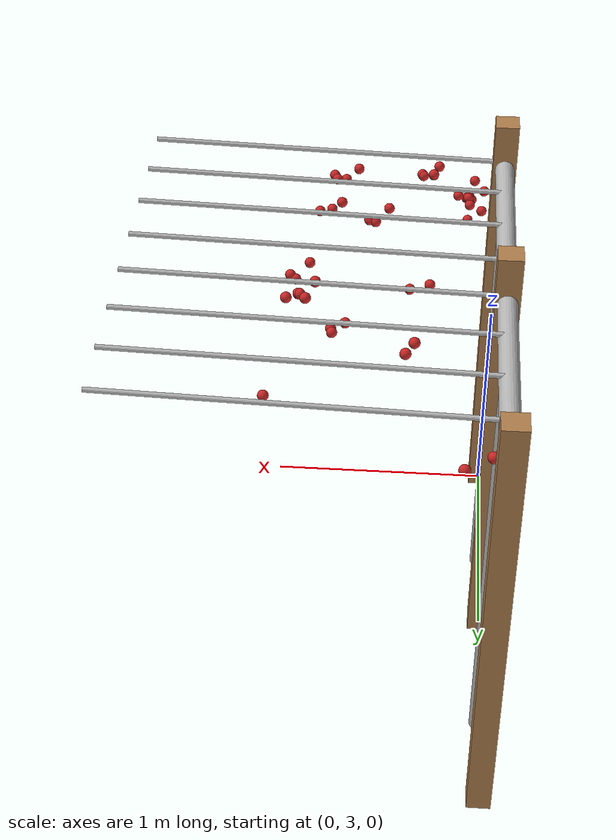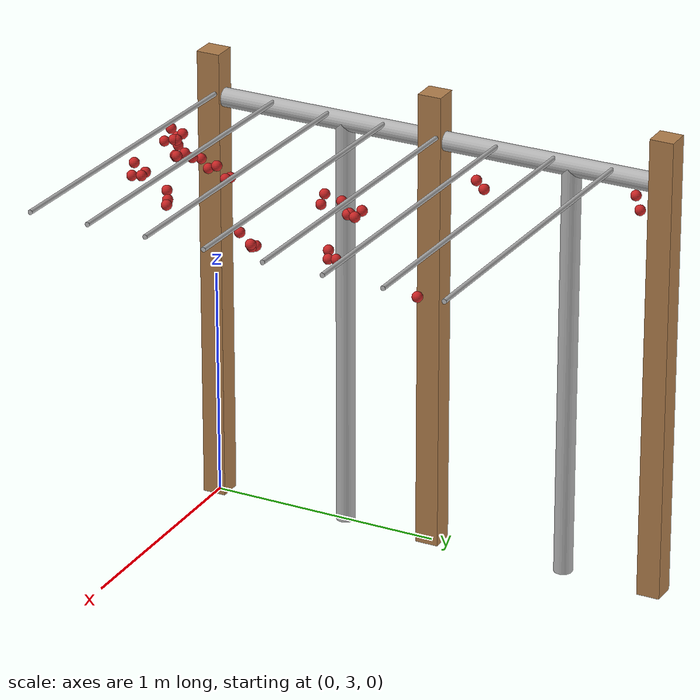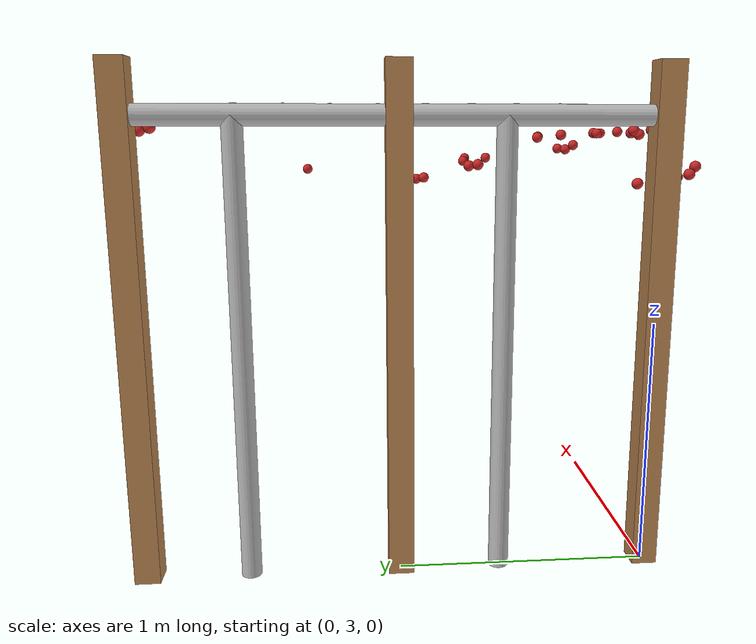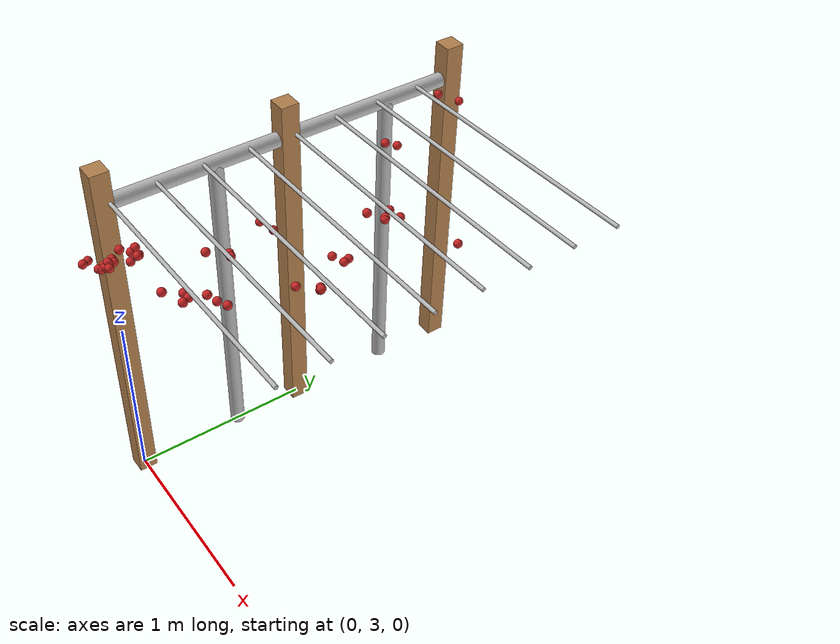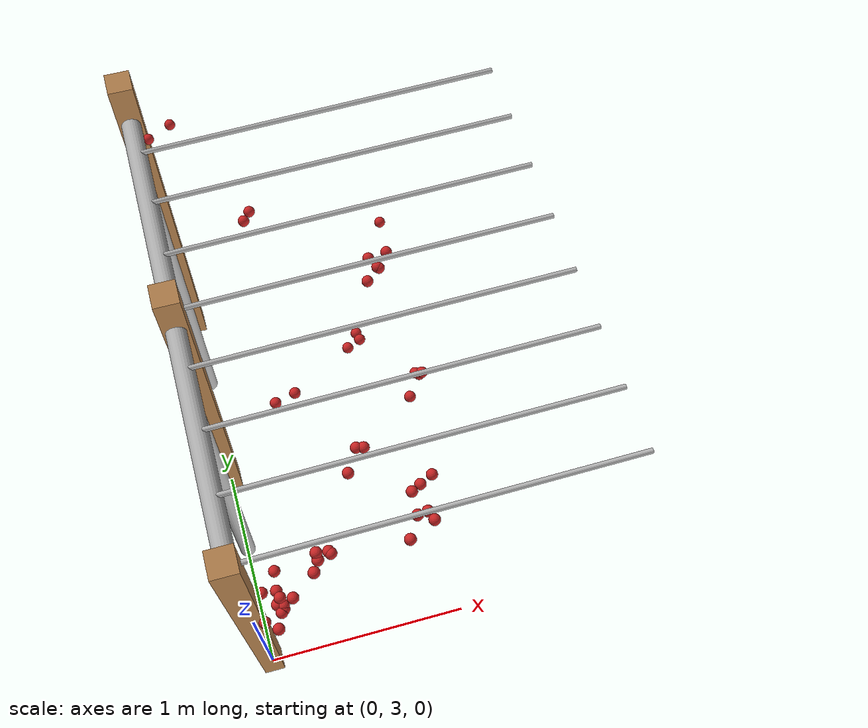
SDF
<sdf version="1.4">
 <model name="pergola">
  <include><name>post_3</name><pose>0.0 3.0 0 0 0 0</pose><uri>model://post</uri></include>
  <include><name>post_4</name><pose>0.0 4.0 0 0 0 0</pose><uri>model://post</uri></include>
  <include><name>post_5</name><pose>0.0 5.0 0 0 0 0</pose><uri>model://post</uri></include>
  <include><name>tree_3</name><pose>0.0 3.6 0 0 0 0</pose><uri>model://tree_trunk</uri></include>
  <include><name>tree_4</name><pose>0.0 4.6 0 0 0 0</pose><uri>model://tree_trunk</uri></include>
  <link name="baseBranch_3">
   <pose>0.0 3.5 1.8 1.5707963267948966 0 0</pose>
   <collision name="collision">
    <geometry><cylinder><radius>0.04</radius><length>1.0</length></cylinder></geometry>
   </collision>
   <visual name="visual">
    <geometry><cylinder><radius>0.04</radius><length>1.0</length></cylinder></geometry>
    <material>
     <script>
      <uri>model://tree_trunk/materials/scripts</uri>
      <uri>model://tree_trunk/materials/textures</uri>
      <name>Tree/Bark</name>
     </script>
    </material>
   </visual>
   <inertial>
    <mass>10</mass>
    <inertia>
     <ixx>0.8373333333333332</ixx>
     <ixy>0.0</ixy>
     <ixz>0.0</ixz>
     <iyy>0.8373333333333332</iyy>
     <iyz>0.0</iyz>
     <izz>0.008</izz>
    </inertia>
   </inertial>
  </link>
  <link name="baseBranch_4">
   <pose>0.0 4.5 1.8 1.5707963267948966 0 0</pose>
   <collision name="collision">
    <geometry><cylinder><radius>0.04</radius><length>1.0</length></cylinder></geometry>
   </collision>
   <visual name="visual">
    <geometry><cylinder><radius>0.04</radius><length>1.0</length></cylinder></geometry>
    <material>
     <script>
      <uri>model://tree_trunk/materials/scripts</uri>
      <uri>model://tree_trunk/materials/textures</uri>
      <name>Tree/Bark</name>
     </script>
    </material>
   </visual>
   <inertial>
    <mass>10</mass>
    <inertia>
     <ixx>0.8373333333333332</ixx>
     <ixy>0.0</ixy>
     <ixz>0.0</ixz>
     <iyy>0.8373333333333332</iyy>
     <iyz>0.0</iyz>
     <izz>0.008</izz>
    </inertia>
   </inertial>
  </link>
  <link name="vine_24">
   <pose>0.75 3.03 1.85 0 1.5374753309166493 0</pose>
   <collision name="collision">
    <geometry><cylinder><radius>0.01</radius><length>1.5008331019803633</length></cylinder></geometry>
   </collision>
   <visual name="visual">
    <geometry><cylinder><radius>0.01</radius><length>1.5008331019803633</length></cylinder></geometry>
    <material>
     <script>
      <uri>model://tree_trunk/materials/scripts</uri>
      <uri>model://tree_trunk/materials/textures</uri>
      <name>Tree/Bark</name>
     </script>
    </material>
   </visual>
   <inertial>
    <mass>5</mass>
    <inertia>
     <ixx>0.9386666666666668</ixx>
     <ixy>0.0</ixy>
     <ixz>0.0</ixz>
     <iyy>0.9386666666666668</iyy>
     <iyz>0.0</iyz>
     <izz>0.00025</izz>
    </inertia>
   </inertial>
  </link>
  <link name="vine_26">
   <pose>0.75 3.28 1.85 0 1.5374753309166493 0</pose>
   <collision name="collision">
    <geometry><cylinder><radius>0.01</radius><length>1.5008331019803633</length></cylinder></geometry>
   </collision>
   <visual name="visual">
    <geometry><cylinder><radius>0.01</radius><length>1.5008331019803633</length></cylinder></geometry>
    <material>
     <script>
      <uri>model://tree_trunk/materials/scripts</uri>
      <uri>model://tree_trunk/materials/textures</uri>
      <name>Tree/Bark</name>
     </script>
    </material>
   </visual>
   <inertial>
    <mass>5</mass>
    <inertia>
     <ixx>0.9386666666666668</ixx>
     <ixy>0.0</ixy>
     <ixz>0.0</ixz>
     <iyy>0.9386666666666668</iyy>
     <iyz>0.0</iyz>
     <izz>0.00025</izz>
    </inertia>
   </inertial>
  </link>
  <link name="vine_28">
   <pose>0.75 3.53 1.85 0 1.5374753309166493 0</pose>
   <collision name="collision">
    <geometry><cylinder><radius>0.01</radius><length>1.5008331019803633</length></cylinder></geometry>
   </collision>
   <visual name="visual">
    <geometry><cylinder><radius>0.01</radius><length>1.5008331019803633</length></cylinder></geometry>
    <material>
     <script>
      <uri>model://tree_trunk/materials/scripts</uri>
      <uri>model://tree_trunk/materials/textures</uri>
      <name>Tree/Bark</name>
     </script>
    </material>
   </visual>
   <inertial>
    <mass>5</mass>
    <inertia>
     <ixx>0.9386666666666668</ixx>
     <ixy>0.0</ixy>
     <ixz>0.0</ixz>
     <iyy>0.9386666666666668</iyy>
     <iyz>0.0</iyz>
     <izz>0.00025</izz>
    </inertia>
   </inertial>
  </link>
  <link name="vine_30">
   <pose>0.75 3.78 1.85 0 1.5374753309166493 0</pose>
   <collision name="collision">
    <geometry><cylinder><radius>0.01</radius><length>1.5008331019803633</length></cylinder></geometry>
   </collision>
   <visual name="visual">
    <geometry><cylinder><radius>0.01</radius><length>1.5008331019803633</length></cylinder></geometry>
    <material>
     <script>
      <uri>model://tree_trunk/materials/scripts</uri>
      <uri>model://tree_trunk/materials/textures</uri>
      <name>Tree/Bark</name>
     </script>
    </material>
   </visual>
   <inertial>
    <mass>5</mass>
    <inertia>
     <ixx>0.9386666666666668</ixx>
     <ixy>0.0</ixy>
     <ixz>0.0</ixz>
     <iyy>0.9386666666666668</iyy>
     <iyz>0.0</iyz>
     <izz>0.00025</izz>
    </inertia>
   </inertial>
  </link>
  <link name="vine_32">
   <pose>0.75 4.03 1.85 0 1.5374753309166493 0</pose>
   <collision name="collision">
    <geometry><cylinder><radius>0.01</radius><length>1.5008331019803633</length></cylinder></geometry>
   </collision>
   <visual name="visual">
    <geometry><cylinder><radius>0.01</radius><length>1.5008331019803633</length></cylinder></geometry>
    <material>
     <script>
      <uri>model://tree_trunk/materials/scripts</uri>
      <uri>model://tree_trunk/materials/textures</uri>
      <name>Tree/Bark</name>
     </script>
    </material>
   </visual>
   <inertial>
    <mass>5</mass>
    <inertia>
     <ixx>0.9386666666666668</ixx>
     <ixy>0.0</ixy>
     <ixz>0.0</ixz>
     <iyy>0.9386666666666668</iyy>
     <iyz>0.0</iyz>
     <izz>0.00025</izz>
    </inertia>
   </inertial>
  </link>
  <link name="vine_34">
   <pose>0.75 4.28 1.85 0 1.5374753309166493 0</pose>
   <collision name="collision">
    <geometry><cylinder><radius>0.01</radius><length>1.5008331019803633</length></cylinder></geometry>
   </collision>
   <visual name="visual">
    <geometry><cylinder><radius>0.01</radius><length>1.5008331019803633</length></cylinder></geometry>
    <material>
     <script>
      <uri>model://tree_trunk/materials/scripts</uri>
      <uri>model://tree_trunk/materials/textures</uri>
      <name>Tree/Bark</name>
     </script>
    </material>
   </visual>
   <inertial>
    <mass>5</mass>
    <inertia>
     <ixx>0.9386666666666668</ixx>
     <ixy>0.0</ixy>
     <ixz>0.0</ixz>
     <iyy>0.9386666666666668</iyy>
     <iyz>0.0</iyz>
     <izz>0.00025</izz>
    </inertia>
   </inertial>
  </link>
  <link name="vine_36">
   <pose>0.75 4.53 1.85 0 1.5374753309166493 0</pose>
   <collision name="collision">
    <geometry><cylinder><radius>0.01</radius><length>1.5008331019803633</length></cylinder></geometry>
   </collision>
   <visual name="visual">
    <geometry><cylinder><radius>0.01</radius><length>1.5008331019803633</length></cylinder></geometry>
    <material>
     <script>
      <uri>model://tree_trunk/materials/scripts</uri>
      <uri>model://tree_trunk/materials/textures</uri>
      <name>Tree/Bark</name>
     </script>
    </material>
   </visual>
   <inertial>
    <mass>5</mass>
    <inertia>
     <ixx>0.9386666666666668</ixx>
     <ixy>0.0</ixy>
     <ixz>0.0</ixz>
     <iyy>0.9386666666666668</iyy>
     <iyz>0.0</iyz>
     <izz>0.00025</izz>
    </inertia>
   </inertial>
  </link>
  <link name="vine_38">
   <pose>0.75 4.78 1.85 0 1.5374753309166493 0</pose>
   <collision name="collision">
    <geometry><cylinder><radius>0.01</radius><length>1.5008331019803633</length></cylinder></geometry>
   </collision>
   <visual name="visual">
    <geometry><cylinder><radius>0.01</radius><length>1.5008331019803633</length></cylinder></geometry>
    <material>
     <script>
      <uri>model://tree_trunk/materials/scripts</uri>
      <uri>model://tree_trunk/materials/textures</uri>
      <name>Tree/Bark</name>
     </script>
    </material>
   </visual>
   <inertial>
    <mass>5</mass>
    <inertia>
     <ixx>0.9386666666666668</ixx>
     <ixy>0.0</ixy>
     <ixz>0.0</ixz>
     <iyy>0.9386666666666668</iyy>
     <iyz>0.0</iyz>
     <izz>0.00025</izz>
    </inertia>
   </inertial>
  </link>
  <link name="fruit_2">
   <pose>0.48228560694271283 3.2757549213742156 1.724437775028247 0 0 0</pose>
   <collision name="fruit_collision_2"><geometry><sphere><radius>0.022</radius></sphere></geometry></collision>
   <visual name="visual">
    <geometry><sphere><radius>0.022</radius></sphere></geometry>
    <material><script><name>Gazebo/Red</name></script></material>
   </visual>
   <inertial>
    <mass>0.05</mass>
    <inertia>
     <ixx>9.679999999999999e-06</ixx>
     <ixy>0.0</ixy>
     <ixz>0.0</ixz>
     <iyy>9.679999999999999e-06</iyy>
     <iyz>0.0</iyz>
     <izz>9.679999999999999e-06</izz>
    </inertia>
   </inertial>
   <sensor name="fruit_contact_2" type="contact">
    <plugin name="contact_plugin_2" filename="libcontact_plugin.so"/>
    <contact><collision>fruit_collision_2</collision><topic>fruit_contact_topic_2</topic></contact>
   </sensor>
  </link>
  <link name="fruit_12">
   <pose>0.797906002147465 3.5493905279623754 1.6179921527508667 0 0 0</pose>
   <collision name="fruit_collision_12"><geometry><sphere><radius>0.022</radius></sphere></geometry></collision>
   <visual name="visual">
    <geometry><sphere><radius>0.022</radius></sphere></geometry>
    <material><script><name>Gazebo/Red</name></script></material>
   </visual>
   <inertial>
    <mass>0.05</mass>
    <inertia>
     <ixx>9.679999999999999e-06</ixx>
     <ixy>0.0</ixy>
     <ixz>0.0</ixz>
     <iyy>9.679999999999999e-06</iyy>
     <iyz>0.0</iyz>
     <izz>9.679999999999999e-06</izz>
    </inertia>
   </inertial>
   <sensor name="fruit_contact_12" type="contact">
    <plugin name="contact_plugin_12" filename="libcontact_plugin.so"/>
    <contact><collision>fruit_collision_12</collision><topic>fruit_contact_topic_12</topic></contact>
   </sensor>
  </link>
  <link name="fruit_21">
   <pose>0.07246550612564173 2.8684834055351915 1.5783078235168897 0 0 0</pose>
   <collision name="fruit_collision_21"><geometry><sphere><radius>0.022</radius></sphere></geometry></collision>
   <visual name="visual">
    <geometry><sphere><radius>0.022</radius></sphere></geometry>
    <material><script><name>Gazebo/Red</name></script></material>
   </visual>
   <inertial>
    <mass>0.05</mass>
    <inertia>
     <ixx>9.679999999999999e-06</ixx>
     <ixy>0.0</ixy>
     <ixz>0.0</ixz>
     <iyy>9.679999999999999e-06</iyy>
     <iyz>0.0</iyz>
     <izz>9.679999999999999e-06</izz>
    </inertia>
   </inertial>
   <sensor name="fruit_contact_21" type="contact">
    <plugin name="contact_plugin_21" filename="libcontact_plugin.so"/>
    <contact><collision>fruit_collision_21</collision><topic>fruit_contact_topic_21</topic></contact>
   </sensor>
  </link>
  <link name="fruit_32">
   <pose>0.277513252841198 2.9539990155890616 1.7461623810911704 0 0 0</pose>
   <collision name="fruit_collision_32"><geometry><sphere><radius>0.022</radius></sphere></geometry></collision>
   <visual name="visual">
    <geometry><sphere><radius>0.022</radius></sphere></geometry>
    <material><script><name>Gazebo/Red</name></script></material>
   </visual>
   <inertial>
    <mass>0.05</mass>
    <inertia>
     <ixx>9.679999999999999e-06</ixx>
     <ixy>0.0</ixy>
     <ixz>0.0</ixz>
     <iyy>9.679999999999999e-06</iyy>
     <iyz>0.0</iyz>
     <izz>9.679999999999999e-06</izz>
    </inertia>
   </inertial>
   <sensor name="fruit_contact_32" type="contact">
    <plugin name="contact_plugin_32" filename="libcontact_plugin.so"/>
    <contact><collision>fruit_collision_32</collision><topic>fruit_contact_topic_32</topic></contact>
   </sensor>
  </link>
  <link name="fruit_51">
   <pose>0.7435196531261605 3.9699678349012135 1.813621277704283 0 0 0</pose>
   <collision name="fruit_collision_51"><geometry><sphere><radius>0.022</radius></sphere></geometry></collision>
   <visual name="visual">
    <geometry><sphere><radius>0.022</radius></sphere></geometry>
    <material><script><name>Gazebo/Red</name></script></material>
   </visual>
   <inertial>
    <mass>0.05</mass>
    <inertia>
     <ixx>9.679999999999999e-06</ixx>
     <ixy>0.0</ixy>
     <ixz>0.0</ixz>
     <iyy>9.679999999999999e-06</iyy>
     <iyz>0.0</iyz>
     <izz>9.679999999999999e-06</izz>
    </inertia>
   </inertial>
   <sensor name="fruit_contact_51" type="contact">
    <plugin name="contact_plugin_51" filename="libcontact_plugin.so"/>
    <contact><collision>fruit_collision_51</collision><topic>fruit_contact_topic_51</topic></contact>
   </sensor>
  </link>
  <link name="fruit_53">
   <pose>0.34710895054380525 4.352707107458269 1.823338897350905 0 0 0</pose>
   <collision name="fruit_collision_53"><geometry><sphere><radius>0.022</radius></sphere></geometry></collision>
   <visual name="visual">
    <geometry><sphere><radius>0.022</radius></sphere></geometry>
    <material><script><name>Gazebo/Red</name></script></material>
   </visual>
   <inertial>
    <mass>0.05</mass>
    <inertia>
     <ixx>9.679999999999999e-06</ixx>
     <ixy>0.0</ixy>
     <ixz>0.0</ixz>
     <iyy>9.679999999999999e-06</iyy>
     <iyz>0.0</iyz>
     <izz>9.679999999999999e-06</izz>
    </inertia>
   </inertial>
   <sensor name="fruit_contact_53" type="contact">
    <plugin name="contact_plugin_53" filename="libcontact_plugin.so"/>
    <contact><collision>fruit_collision_53</collision><topic>fruit_contact_topic_53</topic></contact>
   </sensor>
  </link>
  <link name="fruit_74">
   <pose>0.6266371625908188 2.9822994384784574 1.7363476053631557 0 0 0</pose>
   <collision name="fruit_collision_74"><geometry><sphere><radius>0.022</radius></sphere></geometry></collision>
   <visual name="visual">
    <geometry><sphere><radius>0.022</radius></sphere></geometry>
    <material><script><name>Gazebo/Red</name></script></material>
   </visual>
   <inertial>
    <mass>0.05</mass>
    <inertia>
     <ixx>9.679999999999999e-06</ixx>
     <ixy>0.0</ixy>
     <ixz>0.0</ixz>
     <iyy>9.679999999999999e-06</iyy>
     <iyz>0.0</iyz>
     <izz>9.679999999999999e-06</izz>
    </inertia>
   </inertial>
   <sensor name="fruit_contact_74" type="contact">
    <plugin name="contact_plugin_74" filename="libcontact_plugin.so"/>
    <contact><collision>fruit_collision_74</collision><topic>fruit_contact_topic_74</topic></contact>
   </sensor>
  </link>
  <link name="fruit_77">
   <pose>0.6322827952611394 3.8528614494894913 1.5375579651353963 0 0 0</pose>
   <collision name="fruit_collision_77"><geometry><sphere><radius>0.022</radius></sphere></geometry></collision>
   <visual name="visual">
    <geometry><sphere><radius>0.022</radius></sphere></geometry>
    <material><script><name>Gazebo/Red</name></script></material>
   </visual>
   <inertial>
    <mass>0.05</mass>
    <inertia>
     <ixx>9.679999999999999e-06</ixx>
     <ixy>0.0</ixy>
     <ixz>0.0</ixz>
     <iyy>9.679999999999999e-06</iyy>
     <iyz>0.0</iyz>
     <izz>9.679999999999999e-06</izz>
    </inertia>
   </inertial>
   <sensor name="fruit_contact_77" type="contact">
    <plugin name="contact_plugin_77" filename="libcontact_plugin.so"/>
    <contact><collision>fruit_collision_77</collision><topic>fruit_contact_topic_77</topic></contact>
   </sensor>
  </link>
  <link name="fruit_80">
   <pose>0.29739922029324084 3.6614577858737376 1.6084635475613098 0 0 0</pose>
   <collision name="fruit_collision_80"><geometry><sphere><radius>0.022</radius></sphere></geometry></collision>
   <visual name="visual">
    <geometry><sphere><radius>0.022</radius></sphere></geometry>
    <material><script><name>Gazebo/Red</name></script></material>
   </visual>
   <inertial>
    <mass>0.05</mass>
    <inertia>
     <ixx>9.679999999999999e-06</ixx>
     <ixy>0.0</ixy>
     <ixz>0.0</ixz>
     <iyy>9.679999999999999e-06</iyy>
     <iyz>0.0</iyz>
     <izz>9.679999999999999e-06</izz>
    </inertia>
   </inertial>
   <sensor name="fruit_contact_80" type="contact">
    <plugin name="contact_plugin_80" filename="libcontact_plugin.so"/>
    <contact><collision>fruit_collision_80</collision><topic>fruit_contact_topic_80</topic></contact>
   </sensor>
  </link>
  <link name="fruit_96">
   <pose>0.6890414027352684 3.1648738971537567 1.677007216388509 0 0 0</pose>
   <collision name="fruit_collision_96"><geometry><sphere><radius>0.022</radius></sphere></geometry></collision>
   <visual name="visual">
    <geometry><sphere><radius>0.022</radius></sphere></geometry>
    <material><script><name>Gazebo/Red</name></script></material>
   </visual>
   <inertial>
    <mass>0.05</mass>
    <inertia>
     <ixx>9.679999999999999e-06</ixx>
     <ixy>0.0</ixy>
     <ixz>0.0</ixz>
     <iyy>9.679999999999999e-06</iyy>
     <iyz>0.0</iyz>
     <izz>9.679999999999999e-06</izz>
    </inertia>
   </inertial>
   <sensor name="fruit_contact_96" type="contact">
    <plugin name="contact_plugin_96" filename="libcontact_plugin.so"/>
    <contact><collision>fruit_collision_96</collision><topic>fruit_contact_topic_96</topic></contact>
   </sensor>
  </link>
  <link name="fruit_99">
   <pose>0.9120112643259474 4.379731064261952 1.5645137264958877 0 0 0</pose>
   <collision name="fruit_collision_99"><geometry><sphere><radius>0.022</radius></sphere></geometry></collision>
   <visual name="visual">
    <geometry><sphere><radius>0.022</radius></sphere></geometry>
    <material><script><name>Gazebo/Red</name></script></material>
   </visual>
   <inertial>
    <mass>0.05</mass>
    <inertia>
     <ixx>9.679999999999999e-06</ixx>
     <ixy>0.0</ixy>
     <ixz>0.0</ixz>
     <iyy>9.679999999999999e-06</iyy>
     <iyz>0.0</iyz>
     <izz>9.679999999999999e-06</izz>
    </inertia>
   </inertial>
   <sensor name="fruit_contact_99" type="contact">
    <plugin name="contact_plugin_99" filename="libcontact_plugin.so"/>
    <contact><collision>fruit_collision_99</collision><topic>fruit_contact_topic_99</topic></contact>
   </sensor>
  </link>
  <link name="fruit_113">
   <pose>0.05475298214225928 4.901495532427784 1.7554658803422527 0 0 0</pose>
   <collision name="fruit_collision_113"><geometry><sphere><radius>0.022</radius></sphere></geometry></collision>
   <visual name="visual">
    <geometry><sphere><radius>0.022</radius></sphere></geometry>
    <material><script><name>Gazebo/Red</name></script></material>
   </visual>
   <inertial>
    <mass>0.05</mass>
    <inertia>
     <ixx>9.679999999999999e-06</ixx>
     <ixy>0.0</ixy>
     <ixz>0.0</ixz>
     <iyy>9.679999999999999e-06</iyy>
     <iyz>0.0</iyz>
     <izz>9.679999999999999e-06</izz>
    </inertia>
   </inertial>
   <sensor name="fruit_contact_113" type="contact">
    <plugin name="contact_plugin_113" filename="libcontact_plugin.so"/>
    <contact><collision>fruit_collision_113</collision><topic>fruit_contact_topic_113</topic></contact>
   </sensor>
  </link>
  <link name="fruit_138">
   <pose>0.11523222828877826 2.8285510894506216 1.605704446185165 0 0 0</pose>
   <collision name="fruit_collision_138"><geometry><sphere><radius>0.022</radius></sphere></geometry></collision>
   <visual name="visual">
    <geometry><sphere><radius>0.022</radius></sphere></geometry>
    <material><script><name>Gazebo/Red</name></script></material>
   </visual>
   <inertial>
    <mass>0.05</mass>
    <inertia>
     <ixx>9.679999999999999e-06</ixx>
     <ixy>0.0</ixy>
     <ixz>0.0</ixz>
     <iyy>9.679999999999999e-06</iyy>
     <iyz>0.0</iyz>
     <izz>9.679999999999999e-06</izz>
    </inertia>
   </inertial>
   <sensor name="fruit_contact_138" type="contact">
    <plugin name="contact_plugin_138" filename="libcontact_plugin.so"/>
    <contact><collision>fruit_collision_138</collision><topic>fruit_contact_topic_138</topic></contact>
   </sensor>
  </link>
  <link name="fruit_141">
   <pose>0.08228757611143839 2.980320774164884 1.544967563059762 0 0 0</pose>
   <collision name="fruit_collision_141"><geometry><sphere><radius>0.022</radius></sphere></geometry></collision>
   <visual name="visual">
    <geometry><sphere><radius>0.022</radius></sphere></geometry>
    <material><script><name>Gazebo/Red</name></script></material>
   </visual>
   <inertial>
    <mass>0.05</mass>
    <inertia>
     <ixx>9.679999999999999e-06</ixx>
     <ixy>0.0</ixy>
     <ixz>0.0</ixz>
     <iyy>9.679999999999999e-06</iyy>
     <iyz>0.0</iyz>
     <izz>9.679999999999999e-06</izz>
    </inertia>
   </inertial>
   <sensor name="fruit_contact_141" type="contact">
    <plugin name="contact_plugin_141" filename="libcontact_plugin.so"/>
    <contact><collision>fruit_collision_141</collision><topic>fruit_contact_topic_141</topic></contact>
   </sensor>
  </link>
  <link name="fruit_158">
   <pose>0.805168778830281 4.026692936503704 1.793913836388526 0 0 0</pose>
   <collision name="fruit_collision_158"><geometry><sphere><radius>0.022</radius></sphere></geometry></collision>
   <visual name="visual">
    <geometry><sphere><radius>0.022</radius></sphere></geometry>
    <material><script><name>Gazebo/Red</name></script></material>
   </visual>
   <inertial>
    <mass>0.05</mass>
    <inertia>
     <ixx>9.679999999999999e-06</ixx>
     <ixy>0.0</ixy>
     <ixz>0.0</ixz>
     <iyy>9.679999999999999e-06</iyy>
     <iyz>0.0</iyz>
     <izz>9.679999999999999e-06</izz>
    </inertia>
   </inertial>
   <sensor name="fruit_contact_158" type="contact">
    <plugin name="contact_plugin_158" filename="libcontact_plugin.so"/>
    <contact><collision>fruit_collision_158</collision><topic>fruit_contact_topic_158</topic></contact>
   </sensor>
  </link>
  <link name="fruit_163">
   <pose>0.3440441153015273 3.0157467129118403 1.7336615635601325 0 0 0</pose>
   <collision name="fruit_collision_163"><geometry><sphere><radius>0.022</radius></sphere></geometry></collision>
   <visual name="visual">
    <geometry><sphere><radius>0.022</radius></sphere></geometry>
    <material><script><name>Gazebo/Red</name></script></material>
   </visual>
   <inertial>
    <mass>0.05</mass>
    <inertia>
     <ixx>9.679999999999999e-06</ixx>
     <ixy>0.0</ixy>
     <ixz>0.0</ixz>
     <iyy>9.679999999999999e-06</iyy>
     <iyz>0.0</iyz>
     <izz>9.679999999999999e-06</izz>
    </inertia>
   </inertial>
   <sensor name="fruit_contact_163" type="contact">
    <plugin name="contact_plugin_163" filename="libcontact_plugin.so"/>
    <contact><collision>fruit_collision_163</collision><topic>fruit_contact_topic_163</topic></contact>
   </sensor>
  </link>
  <link name="fruit_191">
   <pose>0.15361391648360812 4.963145561027268 1.7442247412412826 0 0 0</pose>
   <collision name="fruit_collision_191"><geometry><sphere><radius>0.022</radius></sphere></geometry></collision>
   <visual name="visual">
    <geometry><sphere><radius>0.022</radius></sphere></geometry>
    <material><script><name>Gazebo/Red</name></script></material>
   </visual>
   <inertial>
    <mass>0.05</mass>
    <inertia>
     <ixx>9.679999999999999e-06</ixx>
     <ixy>0.0</ixy>
     <ixz>0.0</ixz>
     <iyy>9.679999999999999e-06</iyy>
     <iyz>0.0</iyz>
     <izz>9.679999999999999e-06</izz>
    </inertia>
   </inertial>
   <sensor name="fruit_contact_191" type="contact">
    <plugin name="contact_plugin_191" filename="libcontact_plugin.so"/>
    <contact><collision>fruit_collision_191</collision><topic>fruit_contact_topic_191</topic></contact>
   </sensor>
  </link>
  <link name="fruit_201">
   <pose>0.8626769190974628 3.6380440318166167 1.60061206513106 0 0 0</pose>
   <collision name="fruit_collision_201"><geometry><sphere><radius>0.022</radius></sphere></geometry></collision>
   <visual name="visual">
    <geometry><sphere><radius>0.022</radius></sphere></geometry>
    <material><script><name>Gazebo/Red</name></script></material>
   </visual>
   <inertial>
    <mass>0.05</mass>
    <inertia>
     <ixx>9.679999999999999e-06</ixx>
     <ixy>0.0</ixy>
     <ixz>0.0</ixz>
     <iyy>9.679999999999999e-06</iyy>
     <iyz>0.0</iyz>
     <izz>9.679999999999999e-06</izz>
    </inertia>
   </inertial>
   <sensor name="fruit_contact_201" type="contact">
    <plugin name="contact_plugin_201" filename="libcontact_plugin.so"/>
    <contact><collision>fruit_collision_201</collision><topic>fruit_contact_topic_201</topic></contact>
   </sensor>
  </link>
  <link name="fruit_219">
   <pose>0.6826805650054453 3.911925625299389 1.5305198378944052 0 0 0</pose>
   <collision name="fruit_collision_219"><geometry><sphere><radius>0.022</radius></sphere></geometry></collision>
   <visual name="visual">
    <geometry><sphere><radius>0.022</radius></sphere></geometry>
    <material><script><name>Gazebo/Red</name></script></material>
   </visual>
   <inertial>
    <mass>0.05</mass>
    <inertia>
     <ixx>9.679999999999999e-06</ixx>
     <ixy>0.0</ixy>
     <ixz>0.0</ixz>
     <iyy>9.679999999999999e-06</iyy>
     <iyz>0.0</iyz>
     <izz>9.679999999999999e-06</izz>
    </inertia>
   </inertial>
   <sensor name="fruit_contact_219" type="contact">
    <plugin name="contact_plugin_219" filename="libcontact_plugin.so"/>
    <contact><collision>fruit_collision_219</collision><topic>fruit_contact_topic_219</topic></contact>
   </sensor>
  </link>
  <link name="fruit_226">
   <pose>0.3784075021893974 4.4011033924070695 1.807860612959606 0 0 0</pose>
   <collision name="fruit_collision_226"><geometry><sphere><radius>0.022</radius></sphere></geometry></collision>
   <visual name="visual">
    <geometry><sphere><radius>0.022</radius></sphere></geometry>
    <material><script><name>Gazebo/Red</name></script></material>
   </visual>
   <inertial>
    <mass>0.05</mass>
    <inertia>
     <ixx>9.679999999999999e-06</ixx>
     <ixy>0.0</ixy>
     <ixz>0.0</ixz>
     <iyy>9.679999999999999e-06</iyy>
     <iyz>0.0</iyz>
     <izz>9.679999999999999e-06</izz>
    </inertia>
   </inertial>
   <sensor name="fruit_contact_226" type="contact">
    <plugin name="contact_plugin_226" filename="libcontact_plugin.so"/>
    <contact><collision>fruit_collision_226</collision><topic>fruit_contact_topic_226</topic></contact>
   </sensor>
  </link>
  <link name="fruit_241">
   <pose>0.6891350357144942 3.881591238122407 1.5286527528764788 0 0 0</pose>
   <collision name="fruit_collision_241"><geometry><sphere><radius>0.022</radius></sphere></geometry></collision>
   <visual name="visual">
    <geometry><sphere><radius>0.022</radius></sphere></geometry>
    <material><script><name>Gazebo/Red</name></script></material>
   </visual>
   <inertial>
    <mass>0.05</mass>
    <inertia>
     <ixx>9.679999999999999e-06</ixx>
     <ixy>0.0</ixy>
     <ixz>0.0</ixz>
     <iyy>9.679999999999999e-06</iyy>
     <iyz>0.0</iyz>
     <izz>9.679999999999999e-06</izz>
    </inertia>
   </inertial>
   <sensor name="fruit_contact_241" type="contact">
    <plugin name="contact_plugin_241" filename="libcontact_plugin.so"/>
    <contact><collision>fruit_collision_241</collision><topic>fruit_contact_topic_241</topic></contact>
   </sensor>
  </link>
  <link name="fruit_243">
   <pose>0.3495448480456467 3.0067548168306635 1.7355145530970673 0 0 0</pose>
   <collision name="fruit_collision_243"><geometry><sphere><radius>0.022</radius></sphere></geometry></collision>
   <visual name="visual">
    <geometry><sphere><radius>0.022</radius></sphere></geometry>
    <material><script><name>Gazebo/Red</name></script></material>
   </visual>
   <inertial>
    <mass>0.05</mass>
    <inertia>
     <ixx>9.679999999999999e-06</ixx>
     <ixy>0.0</ixy>
     <ixz>0.0</ixz>
     <iyy>9.679999999999999e-06</iyy>
     <iyz>0.0</iyz>
     <izz>9.679999999999999e-06</izz>
    </inertia>
   </inertial>
   <sensor name="fruit_contact_243" type="contact">
    <plugin name="contact_plugin_243" filename="libcontact_plugin.so"/>
    <contact><collision>fruit_collision_243</collision><topic>fruit_contact_topic_243</topic></contact>
   </sensor>
  </link>
  <link name="fruit_244">
   <pose>0.780246901839275 3.2139629120989026 1.659407616458796 0 0 0</pose>
   <collision name="fruit_collision_244"><geometry><sphere><radius>0.022</radius></sphere></geometry></collision>
   <visual name="visual">
    <geometry><sphere><radius>0.022</radius></sphere></geometry>
    <material><script><name>Gazebo/Red</name></script></material>
   </visual>
   <inertial>
    <mass>0.05</mass>
    <inertia>
     <ixx>9.679999999999999e-06</ixx>
     <ixy>0.0</ixy>
     <ixz>0.0</ixz>
     <iyy>9.679999999999999e-06</iyy>
     <iyz>0.0</iyz>
     <izz>9.679999999999999e-06</izz>
    </inertia>
   </inertial>
   <sensor name="fruit_contact_244" type="contact">
    <plugin name="contact_plugin_244" filename="libcontact_plugin.so"/>
    <contact><collision>fruit_collision_244</collision><topic>fruit_contact_topic_244</topic></contact>
   </sensor>
  </link>
  <link name="fruit_266">
   <pose>0.18709053180250668 2.9250626744639407 1.5861733317742115 0 0 0</pose>
   <collision name="fruit_collision_266"><geometry><sphere><radius>0.022</radius></sphere></geometry></collision>
   <visual name="visual">
    <geometry><sphere><radius>0.022</radius></sphere></geometry>
    <material><script><name>Gazebo/Red</name></script></material>
   </visual>
   <inertial>
    <mass>0.05</mass>
    <inertia>
     <ixx>9.679999999999999e-06</ixx>
     <ixy>0.0</ixy>
     <ixz>0.0</ixz>
     <iyy>9.679999999999999e-06</iyy>
     <iyz>0.0</iyz>
     <izz>9.679999999999999e-06</izz>
    </inertia>
   </inertial>
   <sensor name="fruit_contact_266" type="contact">
    <plugin name="contact_plugin_266" filename="libcontact_plugin.so"/>
    <contact><collision>fruit_collision_266</collision><topic>fruit_contact_topic_266</topic></contact>
   </sensor>
  </link>
  <link name="fruit_267">
   <pose>0.8481180830455969 4.079088568708449 1.8102106534040139 0 0 0</pose>
   <collision name="fruit_collision_267"><geometry><sphere><radius>0.022</radius></sphere></geometry></collision>
   <visual name="visual">
    <geometry><sphere><radius>0.022</radius></sphere></geometry>
    <material><script><name>Gazebo/Red</name></script></material>
   </visual>
   <inertial>
    <mass>0.05</mass>
    <inertia>
     <ixx>9.679999999999999e-06</ixx>
     <ixy>0.0</ixy>
     <ixz>0.0</ixz>
     <iyy>9.679999999999999e-06</iyy>
     <iyz>0.0</iyz>
     <izz>9.679999999999999e-06</izz>
    </inertia>
   </inertial>
   <sensor name="fruit_contact_267" type="contact">
    <plugin name="contact_plugin_267" filename="libcontact_plugin.so"/>
    <contact><collision>fruit_collision_267</collision><topic>fruit_contact_topic_267</topic></contact>
   </sensor>
  </link>
  <link name="fruit_296">
   <pose>0.1274386561051528 2.9214637758926463 1.563949199133676 0 0 0</pose>
   <collision name="fruit_collision_296"><geometry><sphere><radius>0.022</radius></sphere></geometry></collision>
   <visual name="visual">
    <geometry><sphere><radius>0.022</radius></sphere></geometry>
    <material><script><name>Gazebo/Red</name></script></material>
   </visual>
   <inertial>
    <mass>0.05</mass>
    <inertia>
     <ixx>9.679999999999999e-06</ixx>
     <ixy>0.0</ixy>
     <ixz>0.0</ixz>
     <iyy>9.679999999999999e-06</iyy>
     <iyz>0.0</iyz>
     <izz>9.679999999999999e-06</izz>
    </inertia>
   </inertial>
   <sensor name="fruit_contact_296" type="contact">
    <plugin name="contact_plugin_296" filename="libcontact_plugin.so"/>
    <contact><collision>fruit_collision_296</collision><topic>fruit_contact_topic_296</topic></contact>
   </sensor>
  </link>
  <link name="fruit_300">
   <pose>0.37847888171118327 3.686981649322437 1.5999204296943226 0 0 0</pose>
   <collision name="fruit_collision_300"><geometry><sphere><radius>0.022</radius></sphere></geometry></collision>
   <visual name="visual">
    <geometry><sphere><radius>0.022</radius></sphere></geometry>
    <material><script><name>Gazebo/Red</name></script></material>
   </visual>
   <inertial>
    <mass>0.05</mass>
    <inertia>
     <ixx>9.679999999999999e-06</ixx>
     <ixy>0.0</ixy>
     <ixz>0.0</ixz>
     <iyy>9.679999999999999e-06</iyy>
     <iyz>0.0</iyz>
     <izz>9.679999999999999e-06</izz>
    </inertia>
   </inertial>
   <sensor name="fruit_contact_300" type="contact">
    <plugin name="contact_plugin_300" filename="libcontact_plugin.so"/>
    <contact><collision>fruit_collision_300</collision><topic>fruit_contact_topic_300</topic></contact>
   </sensor>
  </link>
  <link name="fruit_315">
   <pose>0.8491353652099936 3.6480176578865717 1.6012736947131818 0 0 0</pose>
   <collision name="fruit_collision_315"><geometry><sphere><radius>0.022</radius></sphere></geometry></collision>
   <visual name="visual">
    <geometry><sphere><radius>0.022</radius></sphere></geometry>
    <material><script><name>Gazebo/Red</name></script></material>
   </visual>
   <inertial>
    <mass>0.05</mass>
    <inertia>
     <ixx>9.679999999999999e-06</ixx>
     <ixy>0.0</ixy>
     <ixz>0.0</ixz>
     <iyy>9.679999999999999e-06</iyy>
     <iyz>0.0</iyz>
     <izz>9.679999999999999e-06</izz>
    </inertia>
   </inertial>
   <sensor name="fruit_contact_315" type="contact">
    <plugin name="contact_plugin_315" filename="libcontact_plugin.so"/>
    <contact><collision>fruit_collision_315</collision><topic>fruit_contact_topic_315</topic></contact>
   </sensor>
  </link>
  <link name="fruit_318">
   <pose>0.5355742178931234 3.3660528040385973 1.7129536781367707 0 0 0</pose>
   <collision name="fruit_collision_318"><geometry><sphere><radius>0.022</radius></sphere></geometry></collision>
   <visual name="visual">
    <geometry><sphere><radius>0.022</radius></sphere></geometry>
    <material><script><name>Gazebo/Red</name></script></material>
   </visual>
   <inertial>
    <mass>0.05</mass>
    <inertia>
     <ixx>9.679999999999999e-06</ixx>
     <ixy>0.0</ixy>
     <ixz>0.0</ixz>
     <iyy>9.679999999999999e-06</iyy>
     <iyz>0.0</iyz>
     <izz>9.679999999999999e-06</izz>
    </inertia>
   </inertial>
   <sensor name="fruit_contact_318" type="contact">
    <plugin name="contact_plugin_318" filename="libcontact_plugin.so"/>
    <contact><collision>fruit_collision_318</collision><topic>fruit_contact_topic_318</topic></contact>
   </sensor>
  </link>
  <link name="fruit_322">
   <pose>0.14677225946127898 2.8998613247604377 1.5621236272216275 0 0 0</pose>
   <collision name="fruit_collision_322"><geometry><sphere><radius>0.022</radius></sphere></geometry></collision>
   <visual name="visual">
    <geometry><sphere><radius>0.022</radius></sphere></geometry>
    <material><script><name>Gazebo/Red</name></script></material>
   </visual>
   <inertial>
    <mass>0.05</mass>
    <inertia>
     <ixx>9.679999999999999e-06</ixx>
     <ixy>0.0</ixy>
     <ixz>0.0</ixz>
     <iyy>9.679999999999999e-06</iyy>
     <iyz>0.0</iyz>
     <izz>9.679999999999999e-06</izz>
    </inertia>
   </inertial>
   <sensor name="fruit_contact_322" type="contact">
    <plugin name="contact_plugin_322" filename="libcontact_plugin.so"/>
    <contact><collision>fruit_collision_322</collision><topic>fruit_contact_topic_322</topic></contact>
   </sensor>
  </link>
  <link name="fruit_329">
   <pose>0.7297799153340345 3.1901932388907643 1.657176834177592 0 0 0</pose>
   <collision name="fruit_collision_329"><geometry><sphere><radius>0.022</radius></sphere></geometry></collision>
   <visual name="visual">
    <geometry><sphere><radius>0.022</radius></sphere></geometry>
    <material><script><name>Gazebo/Red</name></script></material>
   </visual>
   <inertial>
    <mass>0.05</mass>
    <inertia>
     <ixx>9.679999999999999e-06</ixx>
     <ixy>0.0</ixy>
     <ixz>0.0</ixz>
     <iyy>9.679999999999999e-06</iyy>
     <iyz>0.0</iyz>
     <izz>9.679999999999999e-06</izz>
    </inertia>
   </inertial>
   <sensor name="fruit_contact_329" type="contact">
    <plugin name="contact_plugin_329" filename="libcontact_plugin.so"/>
    <contact><collision>fruit_collision_329</collision><topic>fruit_contact_topic_329</topic></contact>
   </sensor>
  </link>
  <link name="fruit_357">
   <pose>0.14342133706135396 3.047370844380411 1.5383875341645987 0 0 0</pose>
   <collision name="fruit_collision_357"><geometry><sphere><radius>0.022</radius></sphere></geometry></collision>
   <visual name="visual">
    <geometry><sphere><radius>0.022</radius></sphere></geometry>
    <material><script><name>Gazebo/Red</name></script></material>
   </visual>
   <inertial>
    <mass>0.05</mass>
    <inertia>
     <ixx>9.679999999999999e-06</ixx>
     <ixy>0.0</ixy>
     <ixz>0.0</ixz>
     <iyy>9.679999999999999e-06</iyy>
     <iyz>0.0</iyz>
     <izz>9.679999999999999e-06</izz>
    </inertia>
   </inertial>
   <sensor name="fruit_contact_357" type="contact">
    <plugin name="contact_plugin_357" filename="libcontact_plugin.so"/>
    <contact><collision>fruit_collision_357</collision><topic>fruit_contact_topic_357</topic></contact>
   </sensor>
  </link>
  <link name="fruit_366">
   <pose>0.7290770481927794 3.0299050697020147 1.7294217840463098 0 0 0</pose>
   <collision name="fruit_collision_366"><geometry><sphere><radius>0.022</radius></sphere></geometry></collision>
   <visual name="visual">
    <geometry><sphere><radius>0.022</radius></sphere></geometry>
    <material><script><name>Gazebo/Red</name></script></material>
   </visual>
   <inertial>
    <mass>0.05</mass>
    <inertia>
     <ixx>9.679999999999999e-06</ixx>
     <ixy>0.0</ixy>
     <ixz>0.0</ixz>
     <iyy>9.679999999999999e-06</iyy>
     <iyz>0.0</iyz>
     <izz>9.679999999999999e-06</izz>
    </inertia>
   </inertial>
   <sensor name="fruit_contact_366" type="contact">
    <plugin name="contact_plugin_366" filename="libcontact_plugin.so"/>
    <contact><collision>fruit_collision_366</collision><topic>fruit_contact_topic_366</topic></contact>
   </sensor>
  </link>
  <link name="fruit_371">
   <pose>0.7156450081298372 3.0652967837459104 1.730840840783056 0 0 0</pose>
   <collision name="fruit_collision_371"><geometry><sphere><radius>0.022</radius></sphere></geometry></collision>
   <visual name="visual">
    <geometry><sphere><radius>0.022</radius></sphere></geometry>
    <material><script><name>Gazebo/Red</name></script></material>
   </visual>
   <inertial>
    <mass>0.05</mass>
    <inertia>
     <ixx>9.679999999999999e-06</ixx>
     <ixy>0.0</ixy>
     <ixz>0.0</ixz>
     <iyy>9.679999999999999e-06</iyy>
     <iyz>0.0</iyz>
     <izz>9.679999999999999e-06</izz>
    </inertia>
   </inertial>
   <sensor name="fruit_contact_371" type="contact">
    <plugin name="contact_plugin_371" filename="libcontact_plugin.so"/>
    <contact><collision>fruit_collision_371</collision><topic>fruit_contact_topic_371</topic></contact>
   </sensor>
  </link>
  <link name="fruit_372">
   <pose>0.871921306082537 3.6378018594836163 1.6140593904560772 0 0 0</pose>
   <collision name="fruit_collision_372"><geometry><sphere><radius>0.022</radius></sphere></geometry></collision>
   <visual name="visual">
    <geometry><sphere><radius>0.022</radius></sphere></geometry>
    <material><script><name>Gazebo/Red</name></script></material>
   </visual>
   <inertial>
    <mass>0.05</mass>
    <inertia>
     <ixx>9.679999999999999e-06</ixx>
     <ixy>0.0</ixy>
     <ixz>0.0</ixz>
     <iyy>9.679999999999999e-06</iyy>
     <iyz>0.0</iyz>
     <izz>9.679999999999999e-06</izz>
    </inertia>
   </inertial>
   <sensor name="fruit_contact_372" type="contact">
    <plugin name="contact_plugin_372" filename="libcontact_plugin.so"/>
    <contact><collision>fruit_collision_372</collision><topic>fruit_contact_topic_372</topic></contact>
   </sensor>
  </link>
  <link name="fruit_380">
   <pose>0.6767125040593659 3.0613204502371913 1.729426069822695 0 0 0</pose>
   <collision name="fruit_collision_380"><geometry><sphere><radius>0.022</radius></sphere></geometry></collision>
   <visual name="visual">
    <geometry><sphere><radius>0.022</radius></sphere></geometry>
    <material><script><name>Gazebo/Red</name></script></material>
   </visual>
   <inertial>
    <mass>0.05</mass>
    <inertia>
     <ixx>9.679999999999999e-06</ixx>
     <ixy>0.0</ixy>
     <ixz>0.0</ixz>
     <iyy>9.679999999999999e-06</iyy>
     <iyz>0.0</iyz>
     <izz>9.679999999999999e-06</izz>
    </inertia>
   </inertial>
   <sensor name="fruit_contact_380" type="contact">
    <plugin name="contact_plugin_380" filename="libcontact_plugin.so"/>
    <contact><collision>fruit_collision_380</collision><topic>fruit_contact_topic_380</topic></contact>
   </sensor>
  </link>
  <link name="fruit_392">
   <pose>0.14914522200352787 2.9131451160909703 1.567167644773657 0 0 0</pose>
   <collision name="fruit_collision_392"><geometry><sphere><radius>0.022</radius></sphere></geometry></collision>
   <visual name="visual">
    <geometry><sphere><radius>0.022</radius></sphere></geometry>
    <material><script><name>Gazebo/Red</name></script></material>
   </visual>
   <inertial>
    <mass>0.05</mass>
    <inertia>
     <ixx>9.679999999999999e-06</ixx>
     <ixy>0.0</ixy>
     <ixz>0.0</ixz>
     <iyy>9.679999999999999e-06</iyy>
     <iyz>0.0</iyz>
     <izz>9.679999999999999e-06</izz>
    </inertia>
   </inertial>
   <sensor name="fruit_contact_392" type="contact">
    <plugin name="contact_plugin_392" filename="libcontact_plugin.so"/>
    <contact><collision>fruit_collision_392</collision><topic>fruit_contact_topic_392</topic></contact>
   </sensor>
  </link>
  <link name="fruit_401">
   <pose>0.1426912077309263 2.9383197418474953 1.584287578665283 0 0 0</pose>
   <collision name="fruit_collision_401"><geometry><sphere><radius>0.022</radius></sphere></geometry></collision>
   <visual name="visual">
    <geometry><sphere><radius>0.022</radius></sphere></geometry>
    <material><script><name>Gazebo/Red</name></script></material>
   </visual>
   <inertial>
    <mass>0.05</mass>
    <inertia>
     <ixx>9.679999999999999e-06</ixx>
     <ixy>0.0</ixy>
     <ixz>0.0</ixz>
     <iyy>9.679999999999999e-06</iyy>
     <iyz>0.0</iyz>
     <izz>9.679999999999999e-06</izz>
    </inertia>
   </inertial>
   <sensor name="fruit_contact_401" type="contact">
    <plugin name="contact_plugin_401" filename="libcontact_plugin.so"/>
    <contact><collision>fruit_collision_401</collision><topic>fruit_contact_topic_401</topic></contact>
   </sensor>
  </link>
  <link name="fruit_418">
   <pose>0.3005720432251951 3.0193832186744043 1.7446008510782451 0 0 0</pose>
   <collision name="fruit_collision_418"><geometry><sphere><radius>0.022</radius></sphere></geometry></collision>
   <visual name="visual">
    <geometry><sphere><radius>0.022</radius></sphere></geometry>
    <material><script><name>Gazebo/Red</name></script></material>
   </visual>
   <inertial>
    <mass>0.05</mass>
    <inertia>
     <ixx>9.679999999999999e-06</ixx>
     <ixy>0.0</ixy>
     <ixz>0.0</ixz>
     <iyy>9.679999999999999e-06</iyy>
     <iyz>0.0</iyz>
     <izz>9.679999999999999e-06</izz>
    </inertia>
   </inertial>
   <sensor name="fruit_contact_418" type="contact">
    <plugin name="contact_plugin_418" filename="libcontact_plugin.so"/>
    <contact><collision>fruit_collision_418</collision><topic>fruit_contact_topic_418</topic></contact>
   </sensor>
  </link>
  <link name="fruit_452">
   <pose>0.77461340459143 4.0724423009401365 1.8063767380281632 0 0 0</pose>
   <collision name="fruit_collision_452"><geometry><sphere><radius>0.022</radius></sphere></geometry></collision>
   <visual name="visual">
    <geometry><sphere><radius>0.022</radius></sphere></geometry>
    <material><script><name>Gazebo/Red</name></script></material>
   </visual>
   <inertial>
    <mass>0.05</mass>
    <inertia>
     <ixx>9.679999999999999e-06</ixx>
     <ixy>0.0</ixy>
     <ixz>0.0</ixz>
     <iyy>9.679999999999999e-06</iyy>
     <iyz>0.0</iyz>
     <izz>9.679999999999999e-06</izz>
    </inertia>
   </inertial>
   <sensor name="fruit_contact_452" type="contact">
    <plugin name="contact_plugin_452" filename="libcontact_plugin.so"/>
    <contact><collision>fruit_collision_452</collision><topic>fruit_contact_topic_452</topic></contact>
   </sensor>
  </link>
  <link name="fruit_453">
   <pose>0.5620567028279472 3.3588444951401732 1.7160744450236032 0 0 0</pose>
   <collision name="fruit_collision_453"><geometry><sphere><radius>0.022</radius></sphere></geometry></collision>
   <visual name="visual">
    <geometry><sphere><radius>0.022</radius></sphere></geometry>
    <material><script><name>Gazebo/Red</name></script></material>
   </visual>
   <inertial>
    <mass>0.05</mass>
    <inertia>
     <ixx>9.679999999999999e-06</ixx>
     <ixy>0.0</ixy>
     <ixz>0.0</ixz>
     <iyy>9.679999999999999e-06</iyy>
     <iyz>0.0</iyz>
     <izz>9.679999999999999e-06</izz>
    </inertia>
   </inertial>
   <sensor name="fruit_contact_453" type="contact">
    <plugin name="contact_plugin_453" filename="libcontact_plugin.so"/>
    <contact><collision>fruit_collision_453</collision><topic>fruit_contact_topic_453</topic></contact>
   </sensor>
  </link>
  <link name="fruit_464">
   <pose>0.1371355038054214 2.8905322211233675 1.5633142073510564 0 0 0</pose>
   <collision name="fruit_collision_464"><geometry><sphere><radius>0.022</radius></sphere></geometry></collision>
   <visual name="visual">
    <geometry><sphere><radius>0.022</radius></sphere></geometry>
    <material><script><name>Gazebo/Red</name></script></material>
   </visual>
   <inertial>
    <mass>0.05</mass>
    <inertia>
     <ixx>9.679999999999999e-06</ixx>
     <ixy>0.0</ixy>
     <ixz>0.0</ixz>
     <iyy>9.679999999999999e-06</iyy>
     <iyz>0.0</iyz>
     <izz>9.679999999999999e-06</izz>
    </inertia>
   </inertial>
   <sensor name="fruit_contact_464" type="contact">
    <plugin name="contact_plugin_464" filename="libcontact_plugin.so"/>
    <contact><collision>fruit_collision_464</collision><topic>fruit_contact_topic_464</topic></contact>
   </sensor>
  </link>
  <link name="fruit_473">
   <pose>0.7992991950709092 4.031530770281564 1.7962051890849966 0 0 0</pose>
   <collision name="fruit_collision_473"><geometry><sphere><radius>0.022</radius></sphere></geometry></collision>
   <visual name="visual">
    <geometry><sphere><radius>0.022</radius></sphere></geometry>
    <material><script><name>Gazebo/Red</name></script></material>
   </visual>
   <inertial>
    <mass>0.05</mass>
    <inertia>
     <ixx>9.679999999999999e-06</ixx>
     <ixy>0.0</ixy>
     <ixz>0.0</ixz>
     <iyy>9.679999999999999e-06</iyy>
     <iyz>0.0</iyz>
     <izz>9.679999999999999e-06</izz>
    </inertia>
   </inertial>
   <sensor name="fruit_contact_473" type="contact">
    <plugin name="contact_plugin_473" filename="libcontact_plugin.so"/>
    <contact><collision>fruit_collision_473</collision><topic>fruit_contact_topic_473</topic></contact>
   </sensor>
  </link>
  <link name="fruit_482">
   <pose>0.1351920442054052 2.9691853970424513 1.5668708949264292 0 0 0</pose>
   <collision name="fruit_collision_482"><geometry><sphere><radius>0.022</radius></sphere></geometry></collision>
   <visual name="visual">
    <geometry><sphere><radius>0.022</radius></sphere></geometry>
    <material><script><name>Gazebo/Red</name></script></material>
   </visual>
   <inertial>
    <mass>0.05</mass>
    <inertia>
     <ixx>9.679999999999999e-06</ixx>
     <ixy>0.0</ixy>
     <ixz>0.0</ixz>
     <iyy>9.679999999999999e-06</iyy>
     <iyz>0.0</iyz>
     <izz>9.679999999999999e-06</izz>
    </inertia>
   </inertial>
   <sensor name="fruit_contact_482" type="contact">
    <plugin name="contact_plugin_482" filename="libcontact_plugin.so"/>
    <contact><collision>fruit_collision_482</collision><topic>fruit_contact_topic_482</topic></contact>
   </sensor>
  </link>
  <link name="fruit_493">
   <pose>0.30052086994256433 2.9972047373427357 1.7279180463792223 0 0 0</pose>
   <collision name="fruit_collision_493"><geometry><sphere><radius>0.022</radius></sphere></geometry></collision>
   <visual name="visual">
    <geometry><sphere><radius>0.022</radius></sphere></geometry>
    <material><script><name>Gazebo/Red</name></script></material>
   </visual>
   <inertial>
    <mass>0.05</mass>
    <inertia>
     <ixx>9.679999999999999e-06</ixx>
     <ixy>0.0</ixy>
     <ixz>0.0</ixz>
     <iyy>9.679999999999999e-06</iyy>
     <iyz>0.0</iyz>
     <izz>9.679999999999999e-06</izz>
    </inertia>
   </inertial>
   <sensor name="fruit_contact_493" type="contact">
    <plugin name="contact_plugin_493" filename="libcontact_plugin.so"/>
    <contact><collision>fruit_collision_493</collision><topic>fruit_contact_topic_493</topic></contact>
   </sensor>
  </link>
 </model>
</sdf>
